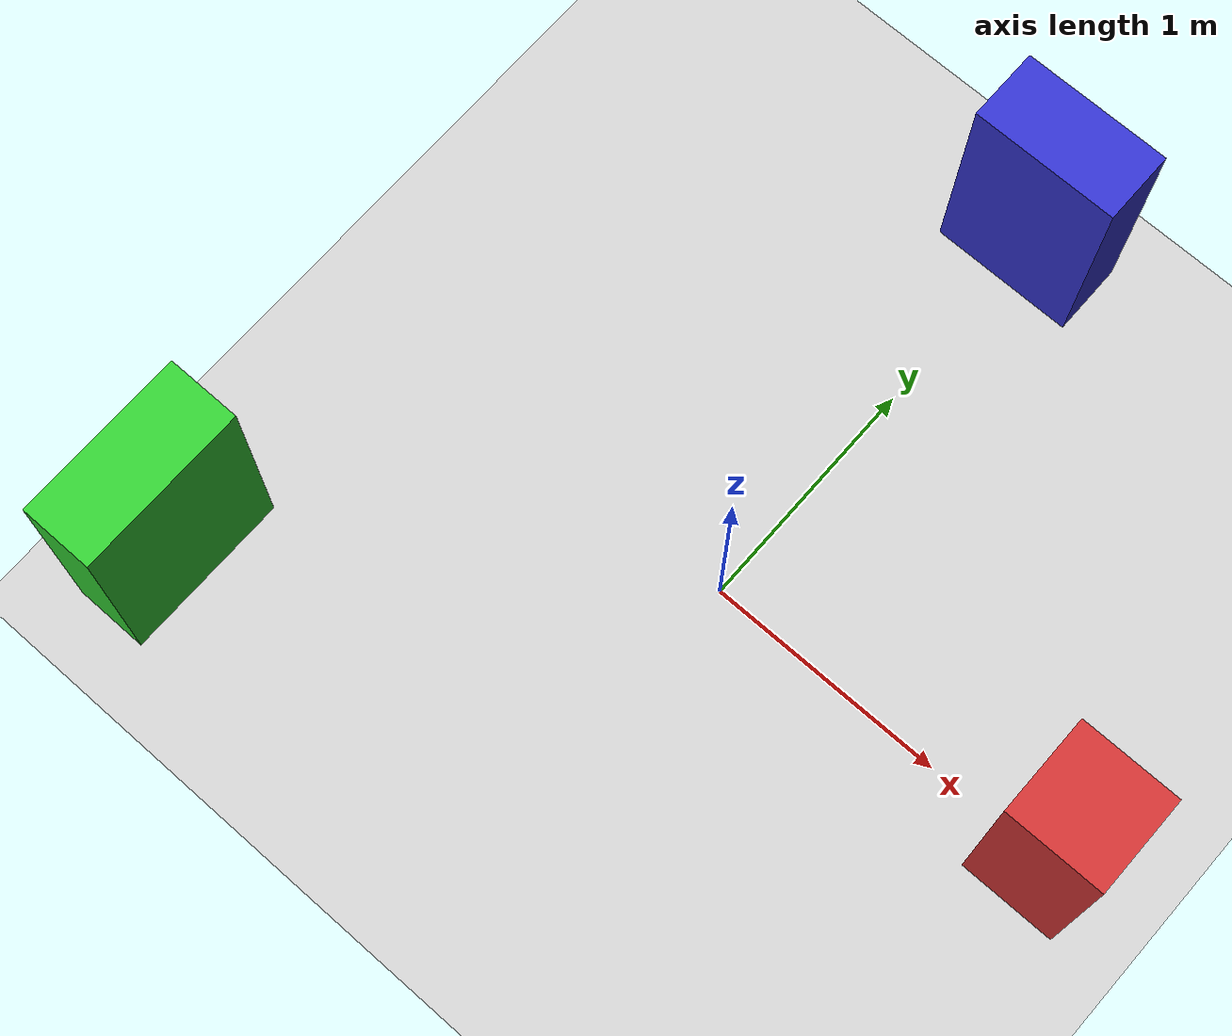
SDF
<?xml version="1.0"?>
<sdf version="1.6">
  <world name="basic_obstacles">
    <include>
      <uri>model://ground_plane</uri>
    </include>
    <include>
      <uri>model://sun</uri>
    </include>

    <!-- Scattered static obstacles -->
    <model name="obstacle_1">
      <static>true</static>
      <pose>1.5 0.0 0.5 0 0 0</pose>
      <link name="link">
        <collision name="collision">
          <geometry>
            <box><size>0.4 0.4 1.0</size></box>
          </geometry>
        </collision>
        <visual name="visual">
          <geometry>
            <box><size>0.4 0.4 1.0</size></box>
          </geometry>
          <material><ambient>0.8 0.2 0.2 1</ambient></material>
        </visual>
      </link>
    </model>

    <model name="obstacle_2">
      <static>true</static>
      <pose>0.0 1.8 0.5 0 0 0</pose>
      <link name="link">
        <collision name="collision">
          <geometry>
            <box><size>0.6 0.3 1.0</size></box>
          </geometry>
        </collision>
        <visual name="visual">
          <geometry>
            <box><size>0.6 0.3 1.0</size></box>
          </geometry>
          <material><ambient>0.2 0.2 0.8 1</ambient></material>
        </visual>
      </link>
    </model>

    <model name="obstacle_3">
      <static>true</static>
      <pose>-1.6 -1.2 0.5 0 0 0</pose>
      <link name="link">
        <collision name="collision">
          <geometry>
            <box><size>0.3 0.7 1.0</size></box>
          </geometry>
        </collision>
        <visual name="visual">
          <geometry>
            <box><size>0.3 0.7 1.0</size></box>
          </geometry>
          <material><ambient>0.2 0.8 0.2 1</ambient></material>
        </visual>
      </link>
    </model>
  </world>
</sdf>
